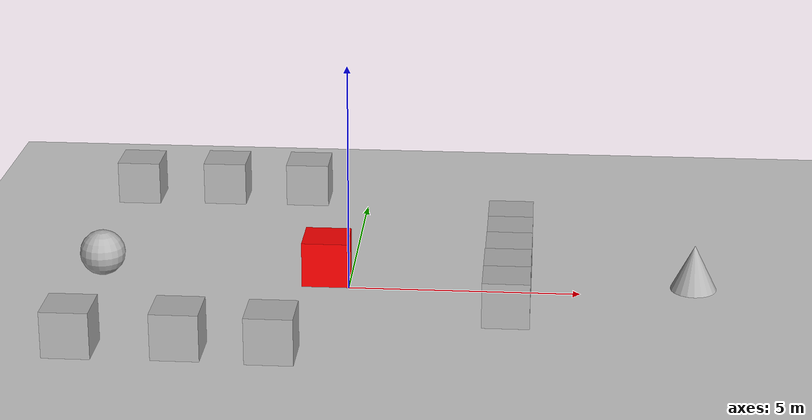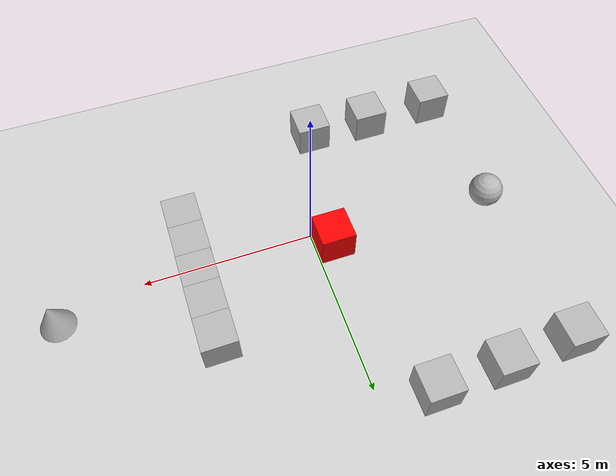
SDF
<sdf version='1.10'>
  <world name='empty'>
    <physics name='1ms' type='ignored'>
      <max_step_size>0.001</max_step_size>
      <real_time_factor>1</real_time_factor>
      <real_time_update_rate>1000</real_time_update_rate>
    </physics>
    <plugin name='gz::sim::systems::Physics' filename='gz-sim-physics-system'/>
    <plugin name='gz::sim::systems::UserCommands' filename='gz-sim-user-commands-system'/>
    <plugin name='gz::sim::systems::SceneBroadcaster' filename='gz-sim-scene-broadcaster-system'/>
    <plugin name='gz::sim::systems::Contact' filename='gz-sim-contact-system'/>
    <gravity>0 0 -9.8000000000000007</gravity>
    <magnetic_field>5.5644999999999998e-06 2.2875799999999999e-05 -4.2388400000000002e-05</magnetic_field>
    <atmosphere type='adiabatic'/>
    <scene>
      <ambient>0.400000006 0.400000006 0.400000006 1</ambient>
      <background>0.699999988 0.699999988 0.699999988 1</background>
      <shadows>true</shadows>
    </scene>
    <model name='ground_plane'>
      <static>true</static>
      <link name='link'>
        <collision name='collision'>
          <geometry>
            <plane>
              <normal>0 0 1</normal>
              <size>100 100</size>
            </plane>
          </geometry>
          <surface>
            <friction>
              <ode/>
            </friction>
            <bounce/>
            <contact/>
          </surface>
        </collision>
        <visual name='visual'>
          <geometry>
            <plane>
              <normal>0 0 1</normal>
              <size>100 100</size>
            </plane>
          </geometry>
          <material>
            <ambient>0.800000012 0.800000012 0.800000012 1</ambient>
            <diffuse>0.800000012 0.800000012 0.800000012 1</diffuse>
            <specular>0.800000012 0.800000012 0.800000012 1</specular>
          </material>
        </visual>
        <pose>0 0 0 0 0 0</pose>
        <inertial>
          <pose>0 0 0 0 0 0</pose>
          <mass>1</mass>
          <inertia>
            <ixx>1</ixx>
            <ixy>0</ixy>
            <ixz>0</ixz>
            <iyy>1</iyy>
            <iyz>0</iyz>
            <izz>1</izz>
          </inertia>
        </inertial>
        <enable_wind>false</enable_wind>
      </link>
      <pose>0 0 0 0 0 0</pose>
      <self_collide>false</self_collide>
    </model>
    <model name='box'>
      <pose>3.4498297652065695 1.5114650562474292 0.5 0 0 0</pose>
      <link name='box_link'>
        <inertial>
          <inertia>
            <ixx>0.16666</ixx>
            <ixy>0</ixy>
            <ixz>0</ixz>
            <iyy>0.16666</iyy>
            <iyz>0</iyz>
            <izz>0.16666</izz>
          </inertia>
          <mass>1</mass>
          <pose>0 0 0 0 0 0</pose>
        </inertial>
        <collision name='box_collision'>
          <geometry>
            <box>
              <size>1 1 1</size>
            </box>
          </geometry>
          <surface>
            <friction>
              <ode/>
            </friction>
            <bounce/>
            <contact/>
          </surface>
        </collision>
        <visual name='box_visual'>
          <geometry>
            <box>
              <size>1 1 1</size>
            </box>
          </geometry>
          <material>
            <ambient>0.300000012 0.300000012 0.300000012 1</ambient>
            <diffuse>0.699999988 0.699999988 0.699999988 1</diffuse>
            <specular>1 1 1 1</specular>
          </material>
        </visual>
        <pose>0 0 0 0 0 0</pose>
        <enable_wind>false</enable_wind>
      </link>
      <static>false</static>
      <self_collide>false</self_collide>
    </model>
    <model name='box_0'>
      <pose>3.4471695153493251 0.51886129483766996 0.5 0 0 0</pose>
      <link name='box_link'>
        <inertial>
          <inertia>
            <ixx>0.16666</ixx>
            <ixy>0</ixy>
            <ixz>0</ixz>
            <iyy>0.16666</iyy>
            <iyz>0</iyz>
            <izz>0.16666</izz>
          </inertia>
          <mass>1</mass>
          <pose>0 0 0 0 0 0</pose>
        </inertial>
        <collision name='box_collision'>
          <geometry>
            <box>
              <size>1 1 1</size>
            </box>
          </geometry>
          <surface>
            <friction>
              <ode/>
            </friction>
            <bounce/>
            <contact/>
          </surface>
        </collision>
        <visual name='box_visual'>
          <geometry>
            <box>
              <size>1 1 1</size>
            </box>
          </geometry>
          <material>
            <ambient>0.300000012 0.300000012 0.300000012 1</ambient>
            <diffuse>0.699999988 0.699999988 0.699999988 1</diffuse>
            <specular>1 1 1 1</specular>
          </material>
        </visual>
        <pose>0 0 0 0 0 0</pose>
        <enable_wind>false</enable_wind>
      </link>
      <static>false</static>
      <self_collide>false</self_collide>
    </model>
    <model name='box_1'>
      <pose>3.4385108704689569 -0.46907549804355508 0.5 0 0 0</pose>
      <link name='box_link'>
        <inertial>
          <inertia>
            <ixx>0.16666</ixx>
            <ixy>0</ixy>
            <ixz>0</ixz>
            <iyy>0.16666</iyy>
            <iyz>0</iyz>
            <izz>0.16666</izz>
          </inertia>
          <mass>1</mass>
          <pose>0 0 0 0 0 0</pose>
        </inertial>
        <collision name='box_collision'>
          <geometry>
            <box>
              <size>1 1 1</size>
            </box>
          </geometry>
          <surface>
            <friction>
              <ode/>
            </friction>
            <bounce/>
            <contact/>
          </surface>
        </collision>
        <visual name='box_visual'>
          <geometry>
            <box>
              <size>1 1 1</size>
            </box>
          </geometry>
          <material>
            <ambient>0.300000012 0.300000012 0.300000012 1</ambient>
            <diffuse>0.699999988 0.699999988 0.699999988 1</diffuse>
            <specular>1 1 1 1</specular>
          </material>
        </visual>
        <pose>0 0 0 0 0 0</pose>
        <enable_wind>false</enable_wind>
      </link>
      <static>false</static>
      <self_collide>false</self_collide>
    </model>
    <model name='box_2'>
      <pose>3.4387927274680572 -1.4657283413174171 0.5 0 0 0</pose>
      <link name='box_link'>
        <inertial>
          <inertia>
            <ixx>0.16666</ixx>
            <ixy>0</ixy>
            <ixz>0</ixz>
            <iyy>0.16666</iyy>
            <iyz>0</iyz>
            <izz>0.16666</izz>
          </inertia>
          <mass>1</mass>
          <pose>0 0 0 0 0 0</pose>
        </inertial>
        <collision name='box_collision'>
          <geometry>
            <box>
              <size>1 1 1</size>
            </box>
          </geometry>
          <surface>
            <friction>
              <ode/>
            </friction>
            <bounce/>
            <contact/>
          </surface>
        </collision>
        <visual name='box_visual'>
          <geometry>
            <box>
              <size>1 1 1</size>
            </box>
          </geometry>
          <material>
            <ambient>0.300000012 0.300000012 0.300000012 1</ambient>
            <diffuse>0.699999988 0.699999988 0.699999988 1</diffuse>
            <specular>1 1 1 1</specular>
          </material>
        </visual>
        <pose>0 0 0 0 0 0</pose>
        <enable_wind>false</enable_wind>
      </link>
      <static>false</static>
      <self_collide>false</self_collide>
    </model>
    <model name='box_3'>
      <pose>3.4460731997102947 2.4891323704706427 0.5 0 0 0</pose>
      <link name='box_link'>
        <inertial>
          <inertia>
            <ixx>0.16666</ixx>
            <ixy>0</ixy>
            <ixz>0</ixz>
            <iyy>0.16666</iyy>
            <iyz>0</iyz>
            <izz>0.16666</izz>
          </inertia>
          <mass>1</mass>
          <pose>0 0 0 0 0 0</pose>
        </inertial>
        <collision name='box_collision'>
          <geometry>
            <box>
              <size>1 1 1</size>
            </box>
          </geometry>
          <surface>
            <friction>
              <ode/>
            </friction>
            <bounce/>
            <contact/>
          </surface>
        </collision>
        <visual name='box_visual'>
          <geometry>
            <box>
              <size>1 1 1</size>
            </box>
          </geometry>
          <material>
            <ambient>0.300000012 0.300000012 0.300000012 1</ambient>
            <diffuse>0.699999988 0.699999988 0.699999988 1</diffuse>
            <specular>1 1 1 1</specular>
          </material>
        </visual>
        <pose>0 0 0 0 0 0</pose>
        <enable_wind>false</enable_wind>
      </link>
      <static>false</static>
      <self_collide>false</self_collide>
    </model>
    <model name='box_4'>
      <pose>-0.52385491115014693 0.4926087492836011 0.5 0 0 0</pose>
      <link name='box_link'>
        <inertial>
          <inertia>
            <ixx>0.16666</ixx>
            <ixy>0</ixy>
            <ixz>0</ixz>
            <iyy>0.16666</iyy>
            <iyz>0</iyz>
            <izz>0.16666</izz>
          </inertia>
          <mass>1</mass>
          <pose>0 0 0 0 0 0</pose>
        </inertial>
        <collision name='box_collision'>
          <geometry>
            <box>
              <size>1 1 1</size>
            </box>
          </geometry>
          <surface>
            <friction>
              <ode>
                <mu>0.01</mu>
                <mu2>0.01</mu2>
              </ode>
            </friction>
            <bounce/>
            <contact/>
          </surface>
        </collision>
        <visual name='box_visual'>
          <geometry>
            <box>
              <size>1 1 1</size>
            </box>
          </geometry>
          <material>
            <ambient>1 0 0 1</ambient> <diffuse>1 0 0 1</diffuse>
            <specular>1 1 1 1</specular>
          </material>
        </visual>
        <pose>0 0 0 0 0 0</pose>
        <enable_wind>false</enable_wind>
      </link>

      <plugin
        filename="gz-sim-trajectory-follower-system"
        name="gz::sim::systems::TrajectoryFollower">
        <link_name>box_link</link_name>
        <loop>true</loop>
        <waypoints>
          <waypoint>
            <time>0.0</time>
            <pose>-0.523855 0.492609 0.5 0 0 0</pose>
          </waypoint>
          <waypoint>
            <time>6.0</time>
            <pose>-0.523855 3.492609 0.5 0 0 0</pose>
          </waypoint>
          <waypoint>
            <time>12.0</time>
            <pose>-0.523855 0.492609 0.5 0 0 0</pose>
          </waypoint>
        </waypoints>
        <force>50.0</force>
        <torque>20.0</torque>
        <range_tolerance>0.1</range_tolerance>
      </plugin>

      <static>false</static>
      <self_collide>false</self_collide>
    </model>
    <model name='sphere'>
      <pose>-5.4701587514713346 0.44122645715774311 0.5 0 0 0</pose>
      <link name='sphere_link'>
        <inertial>
          <inertia>
            <ixx>0.10000000000000001</ixx>
            <ixy>0</ixy>
            <ixz>0</ixz>
            <iyy>0.10000000000000001</iyy>
            <iyz>0</iyz>
            <izz>0.10000000000000001</izz>
          </inertia>
          <mass>1</mass>
          <pose>0 0 0 0 0 0</pose>
        </inertial>
        <collision name='sphere_collision'>
          <geometry>
            <sphere>
              <radius>0.5</radius>
            </sphere>
          </geometry>
          <surface>
            <friction>
              <ode/>
            </friction>
            <bounce/>
            <contact/>
          </surface>
        </collision>
        <visual name='sphere_visual'>
          <geometry>
            <sphere>
              <radius>0.5</radius>
            </sphere>
          </geometry>
          <material>
            <ambient>0.300000012 0.300000012 0.300000012 1</ambient>
            <diffuse>0.699999988 0.699999988 0.699999988 1</diffuse>
            <specular>1 1 1 1</specular>
          </material>
        </visual>
        <pose>0 0 0 0 0 0</pose>
        <enable_wind>false</enable_wind>
      </link>
      <static>false</static>
      <self_collide>false</self_collide>
    </model>
    <model name='cone'>
      <pose>7.4507133653285162 0.4835203733637492 0.5 0 0 0</pose>
      <link name='cone_link'>
        <inertial>
          <inertia>
            <ixx>0.074999999999999997</ixx>
            <ixy>0</ixy>
            <ixz>0</ixz>
            <iyy>0.074999999999999997</iyy>
            <iyz>0</iyz>
            <izz>0.074999999999999997</izz>
          </inertia>
          <mass>1</mass>
          <pose>0 0 0 0 0 0</pose>
        </inertial>
        <collision name='cone_collision'>
          <geometry>
            <cone>
              <radius>0.5</radius>
              <length>1</length>
            </cone>
          </geometry>
          <surface>
            <friction>
              <ode/>
            </friction>
            <bounce/>
            <contact/>
          </surface>
        </collision>
        <visual name='cone_visual'>
          <geometry>
            <cone>
              <radius>0.5</radius>
              <length>1</length>
            </cone>
          </geometry>
          <material>
            <ambient>0.300000012 0.300000012 0.300000012 1</ambient>
            <diffuse>0.699999988 0.699999988 0.699999988 1</diffuse>
            <specular>1 1 1 1</specular>
          </material>
        </visual>
        <pose>0 0 0 0 0 0</pose>
        <enable_wind>false</enable_wind>
      </link>
      <static>false</static>
      <self_collide>false</self_collide>
    </model>
    <model name='box_5'>
      <pose>-1.4602930204861728 5.5463985088330805 0.5 0 0 0</pose>
      <link name='box_link'>
        <inertial>
          <inertia>
            <ixx>0.16666</ixx>
            <ixy>0</ixy>
            <ixz>0</ixz>
            <iyy>0.16666</iyy>
            <iyz>0</iyz>
            <izz>0.16666</izz>
          </inertia>
          <mass>1</mass>
          <pose>0 0 0 0 0 0</pose>
        </inertial>
        <collision name='box_collision'>
          <geometry>
            <box>
              <size>1 1 1</size>
            </box>
          </geometry>
          <surface>
            <friction>
              <ode/>
            </friction>
            <bounce/>
            <contact/>
          </surface>
        </collision>
        <visual name='box_visual'>
          <geometry>
            <box>
              <size>1 1 1</size>
            </box>
          </geometry>
          <material>
            <ambient>0.300000012 0.300000012 0.300000012 1</ambient>
            <diffuse>0.699999988 0.699999988 0.699999988 1</diffuse>
            <specular>1 1 1 1</specular>
          </material>
        </visual>
        <pose>0 0 0 0 0 0</pose>
        <enable_wind>false</enable_wind>
      </link>
      <static>false</static>
      <self_collide>false</self_collide>
    </model>
    <model name='box_6'>
      <pose>-3.4423123443694821 5.5110510974279681 0.5 0 0 0</pose>
      <link name='box_link'>
        <inertial>
          <inertia>
            <ixx>0.16666</ixx>
            <ixy>0</ixy>
            <ixz>0</ixz>
            <iyy>0.16666</iyy>
            <iyz>0</iyz>
            <izz>0.16666</izz>
          </inertia>
          <mass>1</mass>
          <pose>0 0 0 0 0 0</pose>
        </inertial>
        <collision name='box_collision'>
          <geometry>
            <box>
              <size>1 1 1</size>
            </box>
          </geometry>
          <surface>
            <friction>
              <ode/>
            </friction>
            <bounce/>
            <contact/>
          </surface>
        </collision>
        <visual name='box_visual'>
          <geometry>
            <box>
              <size>1 1 1</size>
            </box>
          </geometry>
          <material>
            <ambient>0.300000012 0.300000012 0.300000012 1</ambient>
            <diffuse>0.699999988 0.699999988 0.699999988 1</diffuse>
            <specular>1 1 1 1</specular>
          </material>
        </visual>
        <pose>0 0 0 0 0 0</pose>
        <enable_wind>false</enable_wind>
      </link>
      <static>false</static>
      <self_collide>false</self_collide>
    </model>
    <model name='box_7'>
      <pose>-5.4992500098533181 5.416790891734621 0.5 0 0 0</pose>
      <link name='box_link'>
        <inertial>
          <inertia>
            <ixx>0.16666</ixx>
            <ixy>0</ixy>
            <ixz>0</ixz>
            <iyy>0.16666</iyy>
            <iyz>0</iyz>
            <izz>0.16666</izz>
          </inertia>
          <mass>1</mass>
          <pose>0 0 0 0 0 0</pose>
        </inertial>
        <collision name='box_collision'>
          <geometry>
            <box>
              <size>1 1 1</size>
            </box>
          </geometry>
          <surface>
            <friction>
              <ode/>
            </friction>
            <bounce/>
            <contact/>
          </surface>
        </collision>
        <visual name='box_visual'>
          <geometry>
            <box>
              <size>1 1 1</size>
            </box>
          </geometry>
          <material>
            <ambient>0.300000012 0.300000012 0.300000012 1</ambient>
            <diffuse>0.699999988 0.699999988 0.699999988 1</diffuse>
            <specular>1 1 1 1</specular>
          </material>
        </visual>
        <pose>0 0 0 0 0 0</pose>
        <enable_wind>false</enable_wind>
      </link>
      <static>false</static>
      <self_collide>false</self_collide>
    </model>
    <model name='box_8'>
      <pose>-1.2240903917985211 -3.61916562612222 0.5 0 0 0</pose>
      <link name='box_link'>
        <inertial>
          <inertia>
            <ixx>0.16666</ixx>
            <ixy>0</ixy>
            <ixz>0</ixz>
            <iyy>0.16666</iyy>
            <iyz>0</iyz>
            <izz>0.16666</izz>
          </inertia>
          <mass>1</mass>
          <pose>0 0 0 0 0 0</pose>
        </inertial>
        <collision name='box_collision'>
          <geometry>
            <box>
              <size>1 1 1</size>
            </box>
          </geometry>
          <surface>
            <friction>
              <ode/>
            </friction>
            <bounce/>
            <contact/>
          </surface>
        </collision>
        <visual name='box_visual'>
          <geometry>
            <box>
              <size>1 1 1</size>
            </box>
          </geometry>
          <material>
            <ambient>0.300000012 0.300000012 0.300000012 1</ambient>
            <diffuse>0.699999988 0.699999988 0.699999988 1</diffuse>
            <specular>1 1 1 1</specular>
          </material>
        </visual>
        <pose>0 0 0 0 0 0</pose>
        <enable_wind>false</enable_wind>
      </link>
      <static>false</static>
      <self_collide>false</self_collide>
    </model>
    <model name='box_9'>
      <pose>-3.1294727595611112 -3.5579137464915336 0.5 0 0 0</pose>
      <link name='box_link'>
        <inertial>
          <inertia>
            <ixx>0.16666</ixx>
            <ixy>0</ixy>
            <ixz>0</ixz>
            <iyy>0.16666</iyy>
            <iyz>0</iyz>
            <izz>0.16666</izz>
          </inertia>
          <mass>1</mass>
          <pose>0 0 0 0 0 0</pose>
        </inertial>
        <collision name='box_collision'>
          <geometry>
            <box>
              <size>1 1 1</size>
            </box>
          </geometry>
          <surface>
            <friction>
              <ode/>
            </friction>
            <bounce/>
            <contact/>
          </surface>
        </collision>
        <visual name='box_visual'>
          <geometry>
            <box>
              <size>1 1 1</size>
            </box>
          </geometry>
          <material>
            <ambient>0.300000012 0.300000012 0.300000012 1</ambient>
            <diffuse>0.699999988 0.699999988 0.699999988 1</diffuse>
            <specular>1 1 1 1</specular>
          </material>
        </visual>
        <pose>0 0 0 0 0 0</pose>
        <enable_wind>false</enable_wind>
      </link>
      <static>false</static>
      <self_collide>false</self_collide>
    </model>
    <model name='box_10'>
      <pose>-5.3345388209458138 -3.6030392486474909 0.5 0 0 0</pose>
      <link name='box_link'>
        <inertial>
          <inertia>
            <ixx>0.16666</ixx>
            <ixy>0</ixy>
            <ixz>0</ixz>
            <iyy>0.16666</iyy>
            <iyz>0</iyz>
            <izz>0.16666</izz>
          </inertia>
          <mass>1</mass>
          <pose>0 0 0 0 0 0</pose>
        </inertial>
        <collision name='box_collision'>
          <geometry>
            <box>
              <size>1 1 1</size>
            </box>
          </geometry>
          <surface>
            <friction>
              <ode/>
            </friction>
            <bounce/>
            <contact/>
          </surface>
        </collision>
        <visual name='box_visual'>
          <geometry>
            <box>
              <size>1 1 1</size>
            </box>
          </geometry>
          <material>
            <ambient>0.300000012 0.300000012 0.300000012 1</ambient>
            <diffuse>0.699999988 0.699999988 0.699999988 1</diffuse>
            <specular>1 1 1 1</specular>
          </material>
        </visual>
        <pose>0 0 0 0 0 0</pose>
        <enable_wind>false</enable_wind>
      </link>
      <static>false</static>
      <self_collide>false</self_collide>
    </model>
    <light name='sun' type='directional'>
      <pose>0 0 10 0 0 0</pose>
      <cast_shadows>true</cast_shadows>
      <intensity>1</intensity>
      <direction>-0.5 0.10000000000000001 -0.90000000000000002</direction>
      <diffuse>0.800000012 0.800000012 0.800000012 1</diffuse>
      <specular>0.200000003 0.200000003 0.200000003 1</specular>
      <attenuation>
        <range>1000</range>
        <linear>0.01</linear>
        <constant>0.90000000000000002</constant>
        <quadratic>0.001</quadratic>
      </attenuation>
      <spot>
        <inner_angle>0</inner_angle>
        <outer_angle>0</outer_angle>
        <falloff>0</falloff>
      </spot>
    </light>
  </world>
</sdf>
